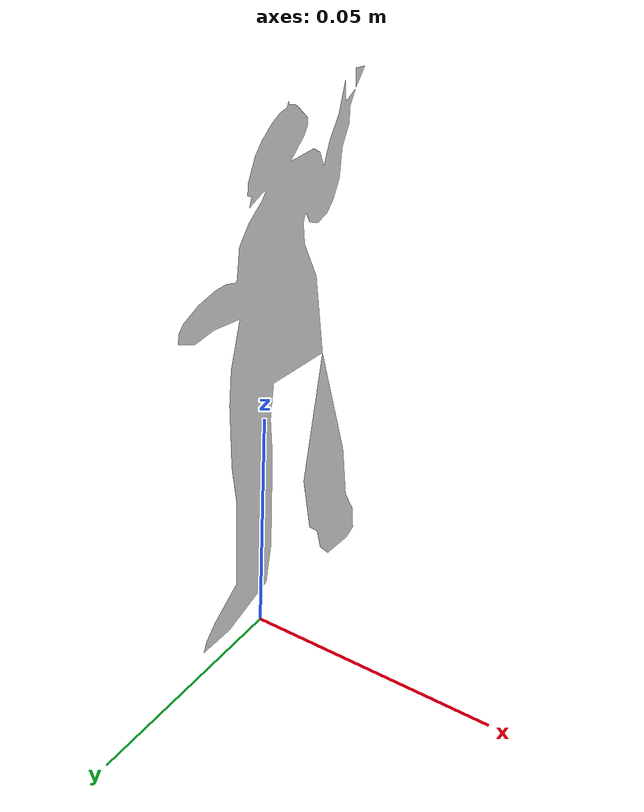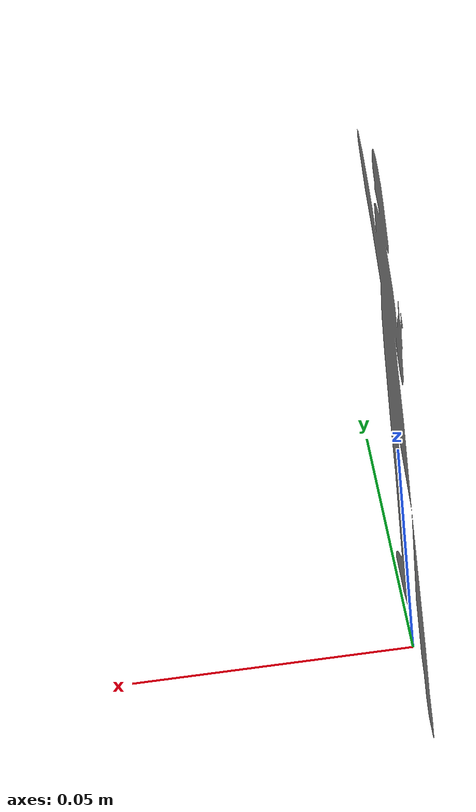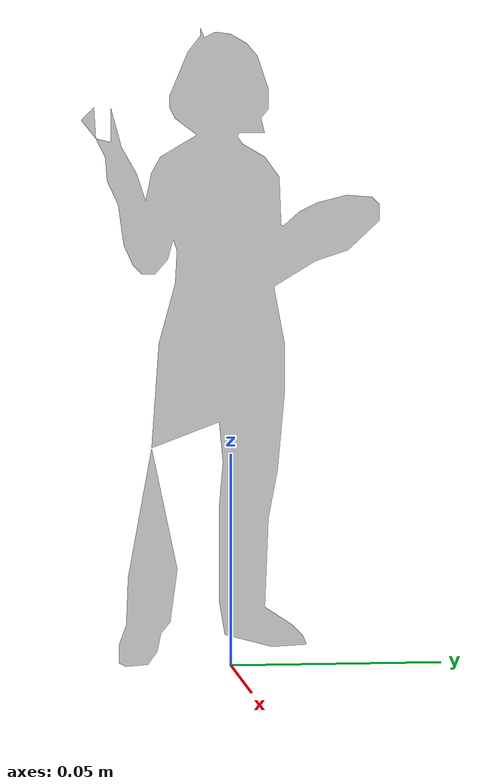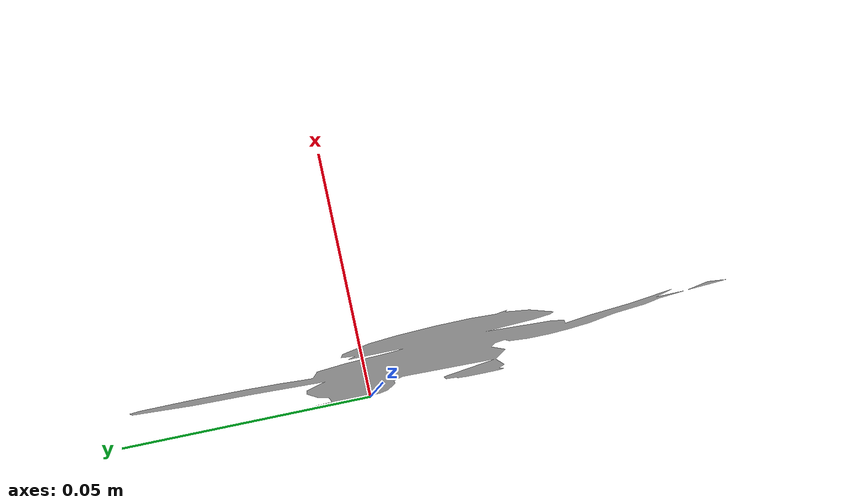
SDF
<?xml version="1.0"?>
<sdf version="1.10">
  <model name="community_person_04">
    <static>true</static>
    <link name="board">
      <collision name="collision"><pose>0 0 0.0750 0 0 0</pose><geometry><box><size>0.004 0.070286 0.150000</size></box></geometry></collision>
      <visual name="person"><geometry><mesh><uri>model://community_person_04/meshes/person.obj</uri></mesh></geometry></visual>
    </link>
  </model>
</sdf>
